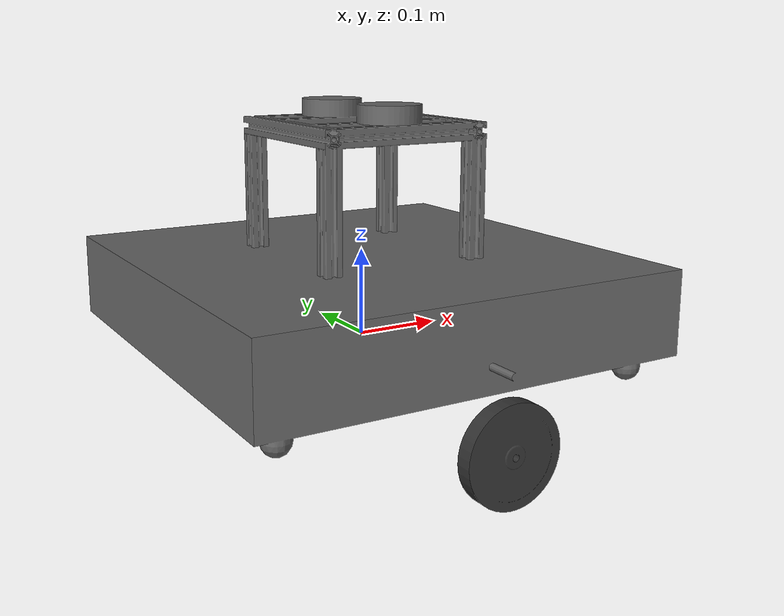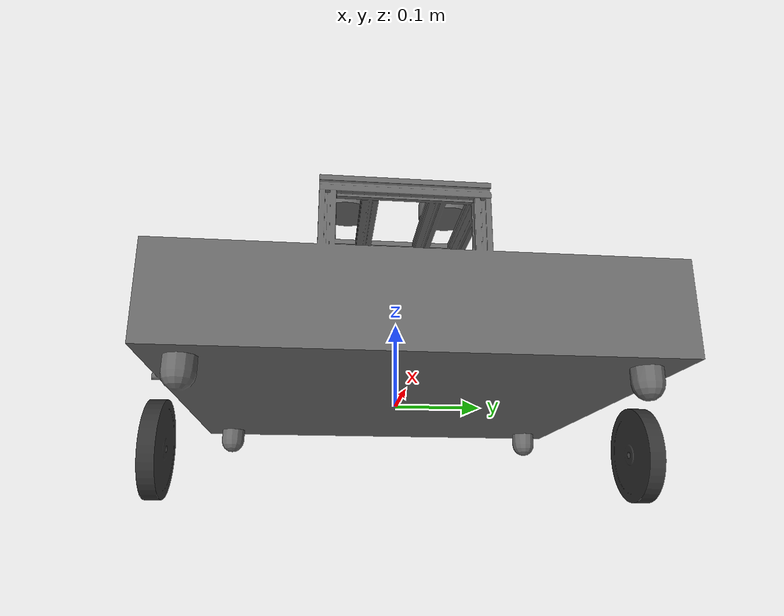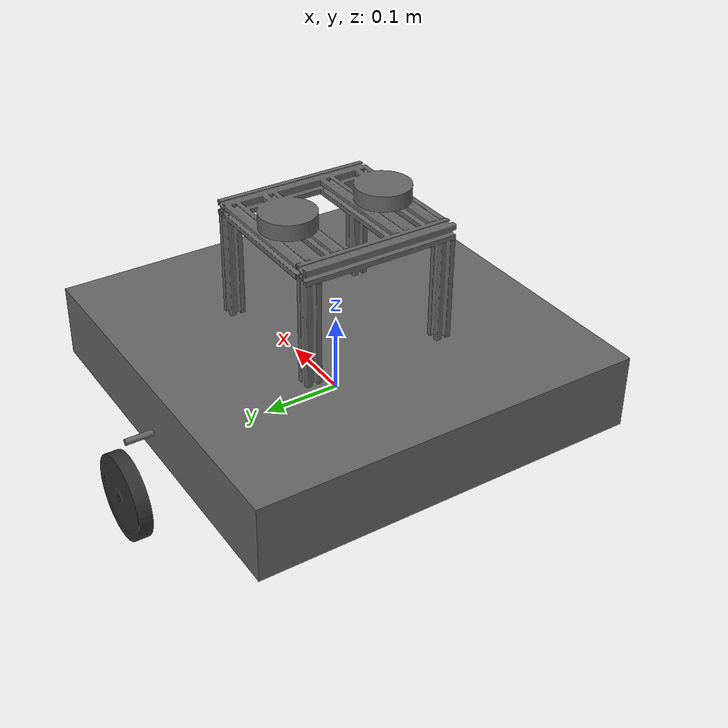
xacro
<?xml version="1.0"?>
<robot name="holo" xmlns:xacro="http://ros.org/wiki/xacro">

  <material name="black"><color rgba="0.15 0.15 0.15 1.0"/></material>
  <material name="dark_grey"><color rgba="0.2 0.2 0.2 1.0"/></material>
  <material name="light_grey"><color rgba="0.4 0.4 0.4 1.0"/></material>

  <link name="base_linkleader">
    <inertial>
      <origin xyz="0.0206901197551754 -1.27048075674319E-05 -0.024985130325309" rpy="0 0 0" />
      <mass value="4.2259789874892" />
      <inertia ixx="0" ixy="0" ixz="0"
               iyy="0" iyz="0"
               izz="0" />
    </inertial>
    <visual>
      <origin xyz="0 0 0" rpy="0 0 0" />
      <geometry>
        <mesh filename="package://non_description/meshes/base_link.STL" />
      </geometry>
      <material name="light_grey"/>
    </visual>
    <collision>
      <origin xyz="0 0 0" rpy="0 0 0" />
      <geometry>
        <mesh filename="package://non_description/meshes/base_link.STL" />
      </geometry>
    </collision>
  </link>
  <link name="left_wheel_linkleader">
    <inertial>
      <origin xyz="-1.11022302462516E-16 -0.0099999999999999 0" rpy="0 0 0" />
      <mass value="0.172530421663568" />
      <inertia ixx="0" ixy="0" ixz="0"
               iyy="0" iyz="0"
               izz="0" />
    </inertial>
    <visual>
      <origin xyz="0 0 0" rpy="0 0 0" />
      <geometry>
        <mesh filename="package://non_description/meshes/link_wheel_left.STL" />
      </geometry>
      <material name="dark_grey"/>
    </visual>
    <collision>
      <origin xyz="0 0 0" rpy="0 0 0" />
      <geometry>
        <mesh filename="package://non_description/meshes/link_wheel_left.STL" />
      </geometry>
    </collision>
  </link>
  <joint name="left_wheel_jointleader" type="continuous">
    <origin xyz="0.010229 0.278 -0.0549" rpy="0 0 0" />
    <parent link="base_linkleader" />
    <child link="left_wheel_linkleader" />
    <axis xyz="0 -1 0" />
    <limit
      lower="0"
      upper="0"
      effort="0"
      velocity="0" />
  </joint>
  <link name="right_wheel_linkleader">
    <inertial>
      <origin xyz="1.11022302462516E-16 0.01 2.88657986402541E-15" rpy="0 0 0" />
      <mass value="0.172530421663567" />
      <inertia ixx="0" ixy="0" ixz="0"
               iyy="0" iyz="0"
               izz="0" />
    </inertial>
    <visual>
      <origin xyz="0 0 0" rpy="0 0 0" />
      <geometry>
        <mesh filename="package://non_description/meshes/link_wheel_right.STL" />
      </geometry>
      <material name="dark_grey"/>
    </visual>
    <collision>
      <origin xyz="0 0 0" rpy="0 0 0" />
      <geometry>
        <mesh filename="package://non_description/meshes/link_wheel_right.STL" />
      </geometry>
    </collision>
  </link>
  <joint name="right_wheel_jointleader" type="continuous">
    <origin xyz="0.010229 -0.278 -0.0549" rpy="0 0 0" />
    <parent link="base_linkleader" />
    <child link="right_wheel_linkleader" />
    <axis xyz="0 -1 0" />
    <limit
      lower="0"
      upper="0"
      effort="0"
      velocity="0" />
  </joint>

  <!-- Include controller plugin for Gazebo -->
  <xacro:include filename="$(find non_description)/urdf/non.gazebo" />

</robot>
